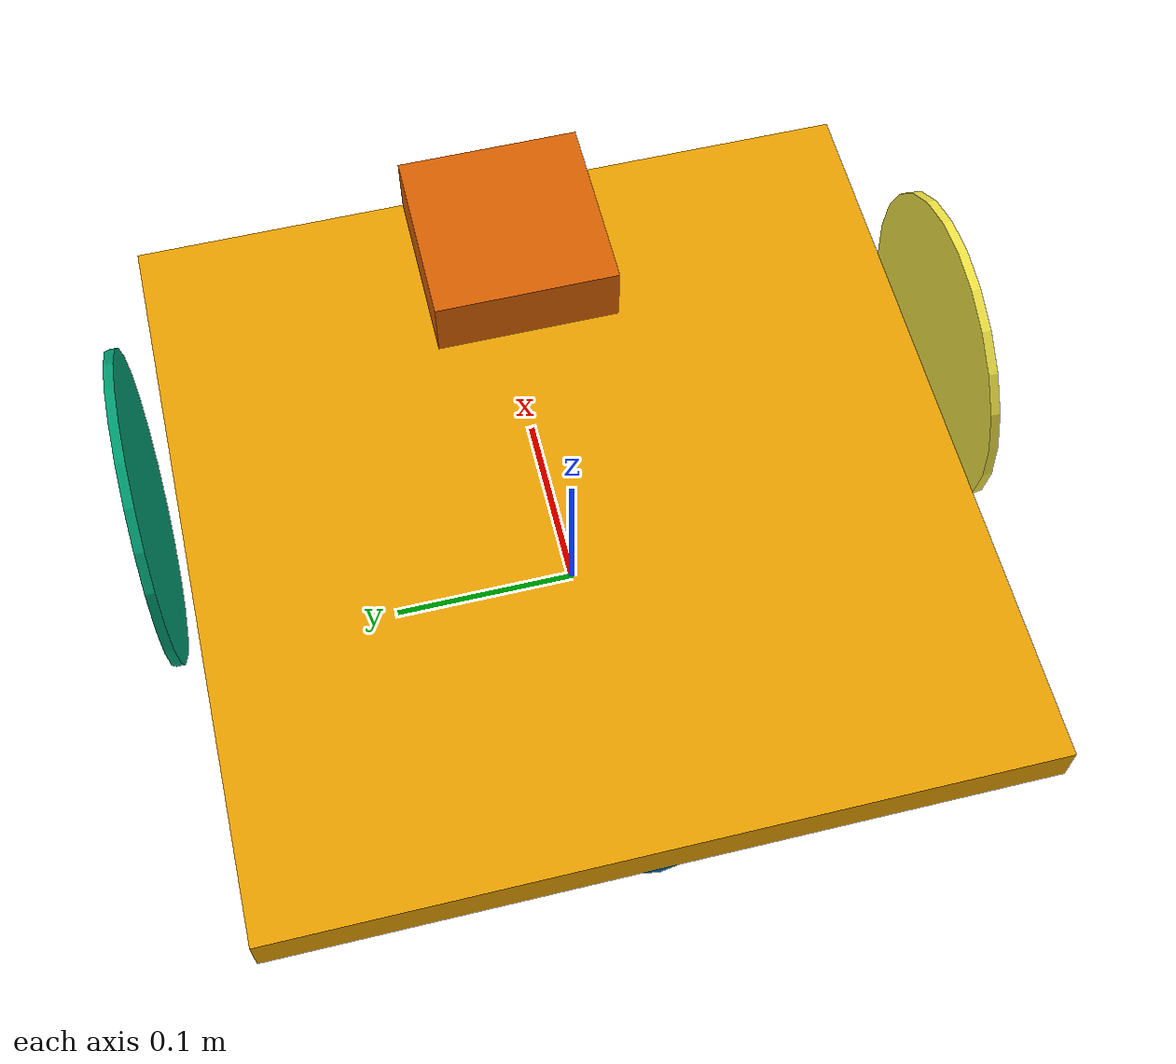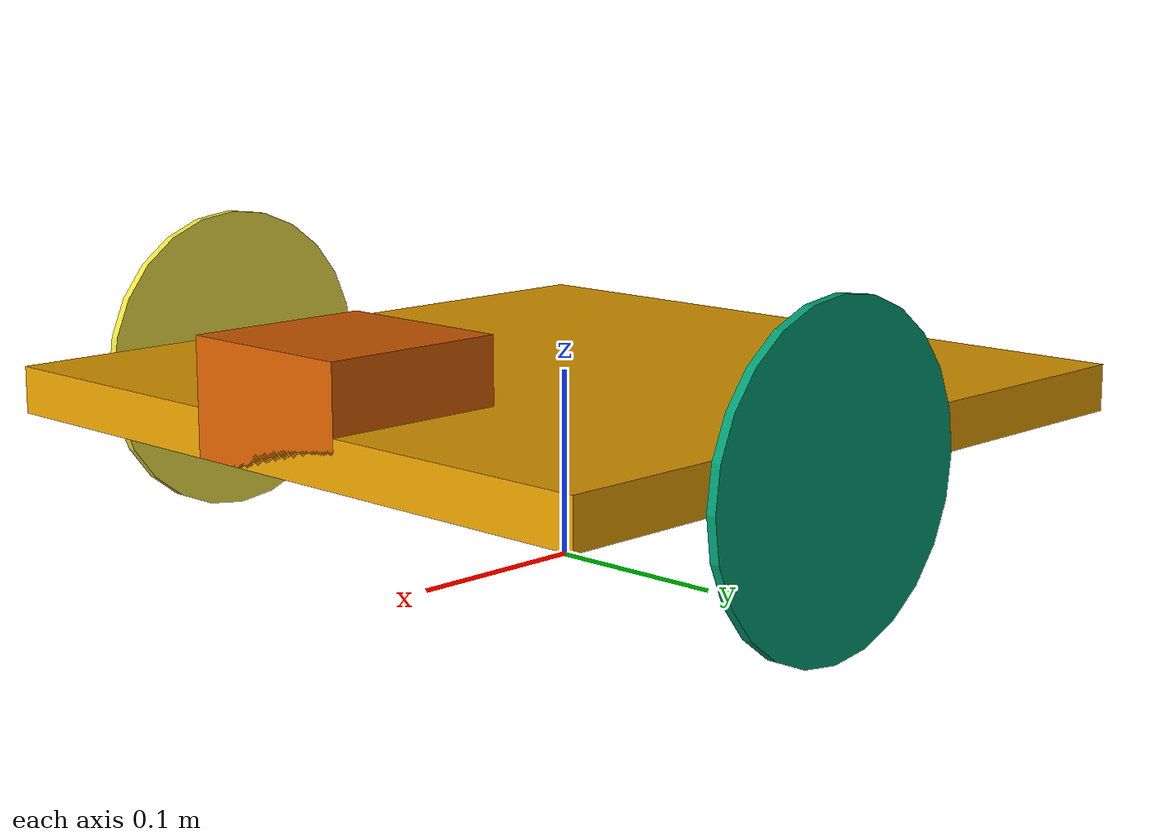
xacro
<?xml version="1.0"?>
<robot xmlns:xacro='http://www.ros.org/wiki/xacro' name='workbot'>

  <xacro:include filename ='$(find mybot_description)/urdf/chassis.xacro'/>

  <xacro:include filename ='$(find mybot_description)/urdf/wheels.xacro'/>

  <xacro:include filename ='$(find mybot_description)/urdf/caster_wheel.xacro'/>

  <xacro:include filename ='$(find mybot_description)/urdf/laser_sensor.xacro'/>

  <xacro:include filename ='$(find mybot_description)/urdf/workbot_gazebo_plugins.xacro'/>
</robot>

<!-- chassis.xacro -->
<robot xmlns:xacro='http://www.ros.org/wiki/xacro' name='chassis'>

  <!-- Chassis Properties -->
  <xacro:property name='base_length' value='0.4'/>
  <xacro:property name='base_width' value='0.4'/>
  <xacro:property name='base_height' value='0.025'/>
  <xacro:property name='base_link_joint_offset' value='0.09'/>

  <!-- Box Inertial -->
  <xacro:macro name = 'box_inertial' params = 'mass x y z'>
    <inertial>
      <mass value = '${mass}'/>
      <inertia ixx = '${mass / 12 * (z*z + y*y)}' ixy = '0.0' ixz = '0.0'
               iyy = '${mass / 12 * (x*x + z*z)}' iyz = '0.0'
               izz = '${mass / 12 * (y*y + z*z)}' />
    </inertial>
  </xacro:macro>

  <!-- Base Link -->
  <link name='base_link'>
    <visual>
      <geometry>
        <box size ='${base_length} ${base_width} ${base_height}'/>
      </geometry>
    </visual>

    <collision>
      <geometry>
        <box size ='${base_length} ${base_width} ${base_height}'/>
      </geometry>
    </collision>

    <xacro:box_inertial mass='1.0' x='${base_length}' y='${base_width}' z='${base_height}'/>
  </link>

  <!-- Base Footprint -->
  <link name='base_footprint'>
    <origin xyz='0 0 0' rpy='0 0 0'/>
    <visual>
      <geometry>
        <box size='0.001 0.001 0.001'/>
      </geometry>
    </visual>
  </link>

  <joint name='base_link_joint' type ='fixed'>
    <origin xyz = '0 0 ${base_link_joint_offset}' rpy='0 0 0'/>
    <parent link='base_footprint'/>
    <child link='base_link'/>
  </joint>

</robot>

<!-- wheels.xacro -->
<robot xmlns:xacro='http://www.ros.org/wiki.xacro' name='wheels'>

  <!-- Wheel properties -->
  <xacro:property name='wheel_radius' value='0.085'/>
  <xacro:property name='wheel_length' value='0.005'/>
  <xacro:property name='wheel_joint_offset' value='0.05'/>
  <xacro:property name='base_wheel_gap' value='0.0175'/>
  <xacro:property name='wheel_separation' value="0.325"/>

  <!-- Cylinder Inertial -->
  <xacro:macro name='cylinder_inertial' params='mass r l'>
    <inertial>
      <mass value='${mass}'/>
      <inertia ixx='${mass*(3*r*r + l*l) / 12}' ixy='0.0' ixz='0.0'
               iyy='${mass*(3*r*r + l*l) / 12}' iyz='0.0'
               izz='${mass*r*r / 2}'/>
    </inertial>
  </xacro:macro>

  <xacro:macro name='wheel' params='prefix reflect'>
    <link name='${prefix}_wheel'>
      <visual>
        <origin xyz='0 0 0' rpy='${pi/2} 0 0'/>
          <geometry>
            <cylinder radius ='${wheel_radius}' length='${wheel_length}'/>
          </geometry>
      </visual>

      <collision>
        <origin xyz='0 0 0' rpy='${pi/2} 0 0'/>
          <geometry>
            <cylinder radius ='${wheel_radius}' length='${wheel_length}'/>
          </geometry>
      </collision>

      <xacro:cylinder_inertial mass='0.5' r='${wheel_radius}' l='${wheel_length}'/>
    </link>

    <joint name='${prefix}_wheel_joint' type='continuous'>
      <origin xyz='${wheel_joint_offset} ${((base_width)/2 + base_wheel_gap)*reflect} -0.005' rpy='0 0 0'/>
      <axis xyz='0 1 0' rpy='0 0 0'/>
      <child link='${prefix}_wheel'/>
      <parent link='base_link'/>
    </joint>
  </xacro:macro>

  <xacro:wheel prefix='left' reflect='1'/>
  <xacro:wheel prefix='right' reflect='-1'/>

</robot>

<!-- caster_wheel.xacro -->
<robot xmlns:xacro='http://www.ros.org/wiki/xacro' name='caster_wheel'>

  <!-- Caster Wheel Properties-->
  <xacro:property name='caster_wheel_radius' value='0.04'/>
  <xacro:property name='caster_wheel_joint_offset' value='-0.15'/>

  <xacro:macro name='sphere_inertial' params='mass r'>
    <inertial>
      <mass value='${mass}'/>
      <inertia ixx='${mass*2*(r*r)/5}' ixy='0.0' ixz='0.0'
               iyy='${mass*2*(r*r)/5}' iyz='0.0'
               izz='${mass*2*(r*r)/5}'/>
    </inertial>
  </xacro:macro>

  <link name='caster_wheel'>
    <visual>
      <origin xyz='0 0 0' rpy='0 0 0'/>
      <geometry>
        <sphere radius='${caster_wheel_radius}'/>
      </geometry>
    </visual>

    <collision>
      <origin xyz='0 0 0' rpy='0 0 0'/>
      <geometry>
        <sphere radius='${caster_wheel_radius}'/>
      </geometry>
    </collision>

    <xacro:sphere_inertial mass='0.8' r='${caster_wheel_radius}'/>

  </link>

  <joint name='caster_wheel_joint' type='continuous'>
    <origin xyz='${caster_wheel_joint_offset} 0 -${caster_wheel_radius + 0.005}' rpy='0 0 0'/>
    <axis xyz='0 1 0' rpy='0 0 0'/>
    <child link='caster_wheel'/>
    <parent link='base_link'/>
  </joint>
</robot>

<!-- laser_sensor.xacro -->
<robot xmlns:xacro='http://www.ros.org/wiki/xacro' name='laser_sensor'>

  <!-- Laser Sensor Properties -->
  <xacro:property name='laser_size_x' value='0.1'/>
  <xacro:property name='laser_size_y' value='0.1'/>
  <xacro:property name='laser_size_z' value='0.06'/>
  <xacro:property name='laser_origin_x' value='0.15'/>
  <xacro:property name='laser_origin_y' value='0'/>
  <xacro:property name='laser_origin_z' value='0.0175'/>

  <link name='laser_sensor'>
    <visual>
      <geometry>
        <box size='${laser_size_x} ${laser_size_y} ${laser_size_z}'/>
      </geometry>
    </visual>

    <xacro:box_inertial mass='0.2' x='${laser_size_x}' y='${laser_size_y}' z='${laser_size_z}'/>
  </link>

  <joint name='sensor_laser_joint' type='fixed'>
    <origin xyz='${laser_origin_x} ${laser_origin_y} ${laser_origin_z}' rpy='0 0 0'/>
    <child link='laser_sensor'/>
    <parent link='base_link'/>
  </joint>

</robot>
